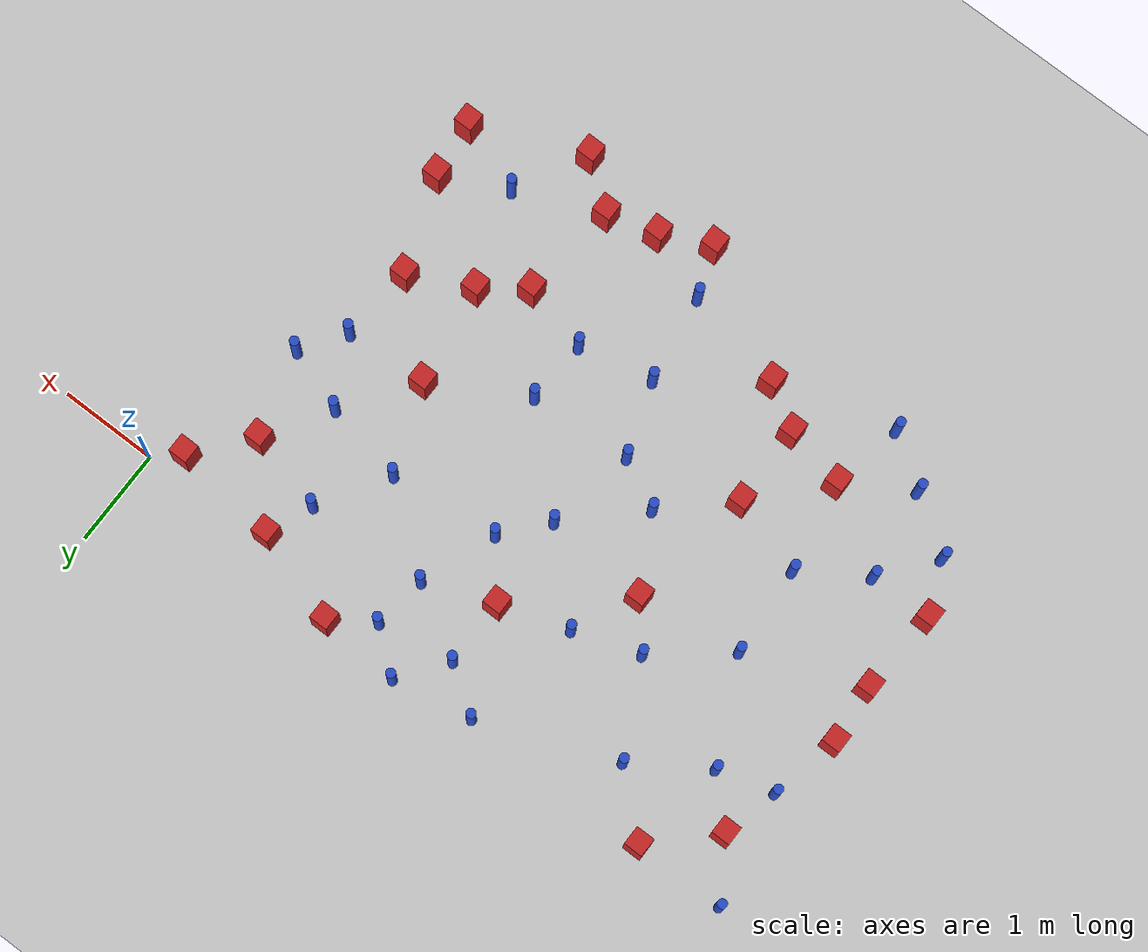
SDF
<sdf version="1.6">
 <world name="default">
  <model name="ground_plane">
   <static>1</static>
   <link name="link">
    <collision name="collision">
     <geometry><plane><normal>0 0 1</normal><size>100 100</size></plane></geometry>
     <surface><friction><ode><mu>100</mu><mu2>50</mu2></ode></friction></surface>
    </collision>
    <visual name="visual">
     <cast_shadows>0</cast_shadows>
     <geometry><plane><normal>0 0 1</normal><size>100 100</size></plane></geometry>
     <material>
      <ambient>1.0 1.0 1.0 1.0</ambient>
      <diffuse>0.8 0.8 0.8 1.0</diffuse>
      <specular>0.01 0.01 0.01 1.000000</specular>
     </material>
    </visual>
   </link>
  </model>
  <model name="square_post_obstacle1">
   <static>true</static>
   <pose>-0.453225772 -4.42769703456 8.22691968438e-08 7.22125133819e-06 -7.54495500217e-07 2.29674213826e-05</pose>
   <link name="link">
    <pose>0 0 0.25 0 -0 0</pose>
    <inertial>
     <mass>100</mass>
     <inertia>
      <ixx>0.166667</ixx>
      <ixy>0</ixy>
      <ixz>0</ixz>
      <iyy>0.166667</iyy>
      <iyz>0</iyz>
      <izz>0.166667</izz>
     </inertia>
    </inertial>
    <collision name="collision"><geometry><box><size>.2 .2 .5</size></box></geometry></collision>
    <visual name="visual">
     <geometry><box><size>.2 .2 .5</size></box></geometry>
     <material>
      <script><name>Gazebo/Red</name><uri>file://media/materials/scripts/gazebo.material</uri></script>
     </material>
    </visual>
   </link>
  </model>
  <model name="square_post_obstacle5">
   <static>true</static>
   <pose>-6.77804085161 -2.3862629534 8.22691968438e-08 7.2212513382e-06 -7.54495500217e-07 2.29674213826e-05</pose>
   <link name="link">
    <pose>0 0 0.25 0 -0 0</pose>
    <inertial>
     <mass>100</mass>
     <inertia>
      <ixx>0.166667</ixx>
      <ixy>0</ixy>
      <ixz>0</ixz>
      <iyy>0.166667</iyy>
      <iyz>0</iyz>
      <izz>0.166667</izz>
     </inertia>
    </inertial>
    <collision name="collision"><geometry><box><size>.2 .2 .5</size></box></geometry></collision>
    <visual name="visual">
     <geometry><box><size>.2 .2 .5</size></box></geometry>
     <material>
      <script><name>Gazebo/Red</name><uri>file://media/materials/scripts/gazebo.material</uri></script>
     </material>
    </visual>
   </link>
  </model>
  <model name="square_post_obstacle6">
   <static>true</static>
   <pose>-6.53302153086 -0.464855870581 8.22691968438e-08 7.2212513382e-06 -7.54495500217e-07 2.29674213826e-05</pose>
   <link name="link">
    <pose>0 0 0.25 0 -0 0</pose>
    <inertial>
     <mass>100</mass>
     <inertia>
      <ixx>0.166667</ixx>
      <ixy>0</ixy>
      <ixz>0</ixz>
      <iyy>0.166667</iyy>
      <iyz>0</iyz>
      <izz>0.166667</izz>
     </inertia>
    </inertial>
    <collision name="collision"><geometry><box><size>.2 .2 .5</size></box></geometry></collision>
    <visual name="visual">
     <geometry><box><size>.2 .2 .5</size></box></geometry>
     <material>
      <script><name>Gazebo/Red</name><uri>file://media/materials/scripts/gazebo.material</uri></script>
     </material>
    </visual>
   </link>
  </model>
  <model name="pole_obstacle5">
   <static>true</static>
   <pose>-1.98658447247 -1.26352869154 2.88873142074e-08 -9.90536690043e-09 4.60219948984e-07 -1.20965994963e-07</pose>
   <link name="link">
    <pose>0 0 0.3 0 -0 0</pose>
    <inertial>
     <mass>1</mass>
     <inertia><ixx>0.145833</ixx><ixy>0</ixy><ixz>0</ixz><iyy>0.145833</iyy><iyz>0</iyz><izz>0.125</izz></inertia>
    </inertial>
    <collision name="collision">
     <geometry><cylinder><radius>0.05</radius><length>.6</length></cylinder></geometry>
    </collision>
    <visual name="visual">
     <geometry><cylinder><radius>0.05</radius><length>.6</length></cylinder></geometry>
     <material>
      <script><name>Gazebo/Blue</name><uri>file://media/materials/scripts/gazebo.material</uri></script>
     </material>
    </visual>
   </link>
  </model>
  <model name="square_post_obstacle8">
   <static>true</static>
   <pose>-3.52622838958 -0.882869343843 8.22691968438e-08 7.2212513382e-06 -7.54495500217e-07 2.29674213826e-05</pose>
   <link name="link">
    <pose>0 0 0.25 0 -0 0</pose>
    <inertial>
     <mass>100</mass>
     <inertia>
      <ixx>0.166667</ixx>
      <ixy>0</ixy>
      <ixz>0</ixz>
      <iyy>0.166667</iyy>
      <iyz>0</iyz>
      <izz>0.166667</izz>
     </inertia>
    </inertial>
    <collision name="collision"><geometry><box><size>.2 .2 .5</size></box></geometry></collision>
    <visual name="visual">
     <geometry><box><size>.2 .2 .5</size></box></geometry>
     <material>
      <script><name>Gazebo/Red</name><uri>file://media/materials/scripts/gazebo.material</uri></script>
     </material>
    </visual>
   </link>
  </model>
  <model name="pole_obstacle7">
   <static>true</static>
   <pose>-4.22980877584 -1.10824775417 2.88873142074e-08 -9.90536689445e-09 4.60219948999e-07 -1.20965994956e-07</pose>
   <link name="link">
    <pose>0 0 0.3 0 -0 0</pose>
    <inertial>
     <mass>1</mass>
     <inertia><ixx>0.145833</ixx><ixy>0</ixy><ixz>0</ixz><iyy>0.145833</iyy><iyz>0</iyz><izz>0.125</izz></inertia>
    </inertial>
    <collision name="collision">
     <geometry><cylinder><radius>0.05</radius><length>.6</length></cylinder></geometry>
    </collision>
    <visual name="visual">
     <geometry><cylinder><radius>0.05</radius><length>.6</length></cylinder></geometry>
     <material>
      <script><name>Gazebo/Blue</name><uri>file://media/materials/scripts/gazebo.material</uri></script>
     </material>
    </visual>
   </link>
  </model>
  <model name="square_post_obstacle19">
   <static>true</static>
   <pose>-5.95324830502 0.11455333152 8.22691968438e-08 7.2212513382e-06 -7.54495500217e-07 2.29674213826e-05</pose>
   <link name="link">
    <pose>0 0 0.25 0 -0 0</pose>
    <inertial>
     <mass>100</mass>
     <inertia>
      <ixx>0.166667</ixx>
      <ixy>0</ixy>
      <ixz>0</ixz>
      <iyy>0.166667</iyy>
      <iyz>0</iyz>
      <izz>0.166667</izz>
     </inertia>
    </inertial>
    <collision name="collision"><geometry><box><size>.2 .2 .5</size></box></geometry></collision>
    <visual name="visual">
     <geometry><box><size>.2 .2 .5</size></box></geometry>
     <material>
      <script><name>Gazebo/Red</name><uri>file://media/materials/scripts/gazebo.material</uri></script>
     </material>
    </visual>
   </link>
  </model>
  <model name="pole_obstacle11">
   <static>true</static>
   <pose>-6.60695953444 -3.79870451077 2.88873142074e-08 -9.90536690245e-09 4.6021994898e-07 -1.20965994966e-07</pose>
   <link name="link">
    <pose>0 0 0.3 0 -0 0</pose>
    <inertial>
     <mass>1</mass>
     <inertia><ixx>0.145833</ixx><ixy>0</ixy><ixz>0</ixz><iyy>0.145833</iyy><iyz>0</iyz><izz>0.125</izz></inertia>
    </inertial>
    <collision name="collision">
     <geometry><cylinder><radius>0.05</radius><length>.6</length></cylinder></geometry>
    </collision>
    <visual name="visual">
     <geometry><cylinder><radius>0.05</radius><length>.6</length></cylinder></geometry>
     <material>
      <script><name>Gazebo/Blue</name><uri>file://media/materials/scripts/gazebo.material</uri></script>
     </material>
    </visual>
   </link>
  </model>
  <model name="pole_obstacle13">
   <static>true</static>
   <pose>-3.47232369091 -1.83874024077 2.88873142074e-08 -9.90536691123e-09 4.60219948959e-07 -1.20965994982e-07</pose>
   <link name="link">
    <pose>0 0 0.3 0 -0 0</pose>
    <inertial>
     <mass>1</mass>
     <inertia><ixx>0.145833</ixx><ixy>0</ixy><ixz>0</ixz><iyy>0.145833</iyy><iyz>0</iyz><izz>0.125</izz></inertia>
    </inertial>
    <collision name="collision">
     <geometry><cylinder><radius>0.05</radius><length>.6</length></cylinder></geometry>
    </collision>
    <visual name="visual">
     <geometry><cylinder><radius>0.05</radius><length>.6</length></cylinder></geometry>
     <material>
      <script><name>Gazebo/Blue</name><uri>file://media/materials/scripts/gazebo.material</uri></script>
     </material>
    </visual>
   </link>
  </model>
  <model name="pole_obstacle23">
   <static>true</static>
   <pose>-5.55312142066 -2.83954073413 2.88873142074e-08 -9.90536690245e-09 4.6021994898e-07 -1.20965994966e-07</pose>
   <link name="link">
    <pose>0 0 0.3 0 -0 0</pose>
    <inertial>
     <mass>1</mass>
     <inertia><ixx>0.145833</ixx><ixy>0</ixy><ixz>0</ixz><iyy>0.145833</iyy><iyz>0</iyz><izz>0.125</izz></inertia>
    </inertial>
    <collision name="collision">
     <geometry><cylinder><radius>0.05</radius><length>.6</length></cylinder></geometry>
    </collision>
    <visual name="visual">
     <geometry><cylinder><radius>0.05</radius><length>.6</length></cylinder></geometry>
     <material>
      <script><name>Gazebo/Blue</name><uri>file://media/materials/scripts/gazebo.material</uri></script>
     </material>
    </visual>
   </link>
  </model>
  <model name="pole_obstacle25">
   <static>true</static>
   <pose>-6.90949432621 0.115962901005 2.88873142074e-08 -9.90536689593e-09 4.60219948995e-07 -1.20965994958e-07</pose>
   <link name="link">
    <pose>0 0 0.3 0 -0 0</pose>
    <inertial>
     <mass>1</mass>
     <inertia><ixx>0.145833</ixx><ixy>0</ixy><ixz>0</ixz><iyy>0.145833</iyy><iyz>0</iyz><izz>0.125</izz></inertia>
    </inertial>
    <collision name="collision">
     <geometry><cylinder><radius>0.05</radius><length>.6</length></cylinder></geometry>
    </collision>
    <visual name="visual">
     <geometry><cylinder><radius>0.05</radius><length>.6</length></cylinder></geometry>
     <material>
      <script><name>Gazebo/Blue</name><uri>file://media/materials/scripts/gazebo.material</uri></script>
     </material>
    </visual>
   </link>
  </model>
  <model name="square_post_obstacle32">
   <static>true</static>
   <pose>-4.2964386524 -4.18320127917 8.22691968438e-08 7.2212513382e-06 -7.54495500217e-07 2.29674213826e-05</pose>
   <link name="link">
    <pose>0 0 0.25 0 -0 0</pose>
    <inertial>
     <mass>100</mass>
     <inertia>
      <ixx>0.166667</ixx>
      <ixy>0</ixy>
      <ixz>0</ixz>
      <iyy>0.166667</iyy>
      <iyz>0</iyz>
      <izz>0.166667</izz>
     </inertia>
    </inertial>
    <collision name="collision"><geometry><box><size>.2 .2 .5</size></box></geometry></collision>
    <visual name="visual">
     <geometry><box><size>.2 .2 .5</size></box></geometry>
     <material>
      <script><name>Gazebo/Red</name><uri>file://media/materials/scripts/gazebo.material</uri></script>
     </material>
    </visual>
   </link>
  </model>
  <model name="square_post_obstacle35">
   <static>true</static>
   <pose>-4.74016853458 -3.90568797373 8.22691968438e-08 7.22125133819e-06 -7.54495500217e-07 2.29674213826e-05</pose>
   <link name="link">
    <pose>0 0 0.25 0 -0 0</pose>
    <inertial>
     <mass>100</mass>
     <inertia>
      <ixx>0.166667</ixx>
      <ixy>0</ixy>
      <ixz>0</ixz>
      <iyy>0.166667</iyy>
      <iyz>0</iyz>
      <izz>0.166667</izz>
     </inertia>
    </inertial>
    <collision name="collision"><geometry><box><size>.2 .2 .5</size></box></geometry></collision>
    <visual name="visual">
     <geometry><box><size>.2 .2 .5</size></box></geometry>
     <material>
      <script><name>Gazebo/Red</name><uri>file://media/materials/scripts/gazebo.material</uri></script>
     </material>
    </visual>
   </link>
  </model>
  <model name="square_post_obstacle37">
   <static>true</static>
   <pose>-1.57165146655 -4.90109415546 8.22691968438e-08 7.2212513382e-06 -7.54495500217e-07 2.29674213826e-05</pose>
   <link name="link">
    <pose>0 0 0.25 0 -0 0</pose>
    <inertial>
     <mass>100</mass>
     <inertia>
      <ixx>0.166667</ixx>
      <ixy>0</ixy>
      <ixz>0</ixz>
      <iyy>0.166667</iyy>
      <iyz>0</iyz>
      <izz>0.166667</izz>
     </inertia>
    </inertial>
    <collision name="collision"><geometry><box><size>.2 .2 .5</size></box></geometry></collision>
    <visual name="visual">
     <geometry><box><size>.2 .2 .5</size></box></geometry>
     <material>
      <script><name>Gazebo/Red</name><uri>file://media/materials/scripts/gazebo.material</uri></script>
     </material>
    </visual>
   </link>
  </model>
  <model name="square_post_obstacle39">
   <static>true</static>
   <pose>-1.6574289807 -2.15318296058 8.22691968438e-08 7.2212513382e-06 -7.54495500217e-07 2.29674213826e-05</pose>
   <link name="link">
    <pose>0 0 0.25 0 -0 0</pose>
    <inertial>
     <mass>100</mass>
     <inertia>
      <ixx>0.166667</ixx>
      <ixy>0</ixy>
      <ixz>0</ixz>
      <iyy>0.166667</iyy>
      <iyz>0</iyz>
      <izz>0.166667</izz>
     </inertia>
    </inertial>
    <collision name="collision"><geometry><box><size>.2 .2 .5</size></box></geometry></collision>
    <visual name="visual">
     <geometry><box><size>.2 .2 .5</size></box></geometry>
     <material>
      <script><name>Gazebo/Red</name><uri>file://media/materials/scripts/gazebo.material</uri></script>
     </material>
    </visual>
   </link>
  </model>
  <model name="pole_obstacle42">
   <static>true</static>
   <pose>-6.19264026144 -3.25655042584 2.88873142074e-08 -9.90536690245e-09 4.6021994898e-07 -1.20965994966e-07</pose>
   <link name="link">
    <pose>0 0 0.3 0 -0 0</pose>
    <inertial>
     <mass>1</mass>
     <inertia><ixx>0.145833</ixx><ixy>0</ixy><ixz>0</ixz><iyy>0.145833</iyy><iyz>0</iyz><izz>0.125</izz></inertia>
    </inertial>
    <collision name="collision">
     <geometry><cylinder><radius>0.05</radius><length>.6</length></cylinder></geometry>
    </collision>
    <visual name="visual">
     <geometry><cylinder><radius>0.05</radius><length>.6</length></cylinder></geometry>
     <material>
      <script><name>Gazebo/Blue</name><uri>file://media/materials/scripts/gazebo.material</uri></script>
     </material>
    </visual>
   </link>
  </model>
  <model name="square_post_obstacle47">
   <static>true</static>
   <pose>-2.32946424457 0.224553306903 8.22691968438e-08 7.2212513382e-06 -7.54495500217e-07 2.29674213826e-05</pose>
   <link name="link">
    <pose>0 0 0.25 0 -0 0</pose>
    <inertial>
     <mass>100</mass>
     <inertia>
      <ixx>0.166667</ixx>
      <ixy>0</ixy>
      <ixz>0</ixz>
      <iyy>0.166667</iyy>
      <iyz>0</iyz>
      <izz>0.166667</izz>
     </inertia>
    </inertial>
    <collision name="collision"><geometry><box><size>.2 .2 .5</size></box></geometry></collision>
    <visual name="visual">
     <geometry><box><size>.2 .2 .5</size></box></geometry>
     <material>
      <script><name>Gazebo/Red</name><uri>file://media/materials/scripts/gazebo.material</uri></script>
     </material>
    </visual>
   </link>
  </model>
  <model name="square_post_obstacle48">
   <static>true</static>
   <pose>-0.518021703305 -3.8456207292 8.22691968438e-08 7.2212513382e-06 -7.54495500217e-07 2.29674213826e-05</pose>
   <link name="link">
    <pose>0 0 0.25 0 -0 0</pose>
    <inertial>
     <mass>100</mass>
     <inertia>
      <ixx>0.166667</ixx>
      <ixy>0</ixy>
      <ixz>0</ixz>
      <iyy>0.166667</iyy>
      <iyz>0</iyz>
      <izz>0.166667</izz>
     </inertia>
    </inertial>
    <collision name="collision"><geometry><box><size>.2 .2 .5</size></box></geometry></collision>
    <visual name="visual">
     <geometry><box><size>.2 .2 .5</size></box></geometry>
     <material>
      <script><name>Gazebo/Red</name><uri>file://media/materials/scripts/gazebo.material</uri></script>
     </material>
    </visual>
   </link>
  </model>
  <model name="pole_obstacle47">
   <static>true</static>
   <pose>-5.37608521531 -0.409149004521 2.88873142074e-08 -9.90536689981e-09 4.60219948986e-07 -1.20965994962e-07</pose>
   <link name="link">
    <pose>0 0 0.3 0 -0 0</pose>
    <inertial>
     <mass>1</mass>
     <inertia><ixx>0.145833</ixx><ixy>0</ixy><ixz>0</ixz><iyy>0.145833</iyy><iyz>0</iyz><izz>0.125</izz></inertia>
    </inertial>
    <collision name="collision">
     <geometry><cylinder><radius>0.05</radius><length>.6</length></cylinder></geometry>
    </collision>
    <visual name="visual">
     <geometry><cylinder><radius>0.05</radius><length>.6</length></cylinder></geometry>
     <material>
      <script><name>Gazebo/Blue</name><uri>file://media/materials/scripts/gazebo.material</uri></script>
     </material>
    </visual>
   </link>
  </model>
  <model name="pole_obstacle48">
   <static>true</static>
   <pose>-3.17051422597 0.285212881764 2.88873142074e-08 -9.90536689488e-09 4.60219948997e-07 -1.20965994956e-07</pose>
   <link name="link">
    <pose>0 0 0.3 0 -0 0</pose>
    <inertial>
     <mass>1</mass>
     <inertia><ixx>0.145833</ixx><ixy>0</ixy><ixz>0</ixz><iyy>0.145833</iyy><iyz>0</iyz><izz>0.125</izz></inertia>
    </inertial>
    <collision name="collision">
     <geometry><cylinder><radius>0.05</radius><length>.6</length></cylinder></geometry>
    </collision>
    <visual name="visual">
     <geometry><cylinder><radius>0.05</radius><length>.6</length></cylinder></geometry>
     <material>
      <script><name>Gazebo/Blue</name><uri>file://media/materials/scripts/gazebo.material</uri></script>
     </material>
    </visual>
   </link>
  </model>
  <model name="square_post_obstacle49">
   <static>true</static>
   <pose>-1.49692169663 -3.18103479338 8.22691968438e-08 7.2212513382e-06 -7.54495500217e-07 2.29674213826e-05</pose>
   <link name="link">
    <pose>0 0 0.25 0 -0 0</pose>
    <inertial>
     <mass>100</mass>
     <inertia>
      <ixx>0.166667</ixx>
      <ixy>0</ixy>
      <ixz>0</ixz>
      <iyy>0.166667</iyy>
      <iyz>0</iyz>
      <izz>0.166667</izz>
     </inertia>
    </inertial>
    <collision name="collision"><geometry><box><size>.2 .2 .5</size></box></geometry></collision>
    <visual name="visual">
     <geometry><box><size>.2 .2 .5</size></box></geometry>
     <material>
      <script><name>Gazebo/Red</name><uri>file://media/materials/scripts/gazebo.material</uri></script>
     </material>
    </visual>
   </link>
  </model>
  <model name="square_post_obstacle67">
   <static>true</static>
   <pose>-4.54516852846 -1.75632292674 8.22691968438e-08 7.2212513382e-06 -7.54495500217e-07 2.29674213826e-05</pose>
   <link name="link">
    <pose>0 0 0.25 0 -0 0</pose>
    <inertial>
     <mass>100</mass>
     <inertia>
      <ixx>0.166667</ixx>
      <ixy>0</ixy>
      <ixz>0</ixz>
      <iyy>0.166667</iyy>
      <iyz>0</iyz>
      <izz>0.166667</izz>
     </inertia>
    </inertial>
    <collision name="collision"><geometry><box><size>.2 .2 .5</size></box></geometry></collision>
    <visual name="visual">
     <geometry><box><size>.2 .2 .5</size></box></geometry>
     <material>
      <script><name>Gazebo/Red</name><uri>file://media/materials/scripts/gazebo.material</uri></script>
     </material>
    </visual>
   </link>
  </model>
  <model name="pole_obstacle76">
   <static>true</static>
   <pose>-5.61727395487 -1.91274012648 2.88873142074e-08 -9.90536689445e-09 4.60219948999e-07 -1.20965994956e-07</pose>
   <link name="link">
    <pose>0 0 0.3 0 -0 0</pose>
    <inertial>
     <mass>1</mass>
     <inertia><ixx>0.145833</ixx><ixy>0</ixy><ixz>0</ixz><iyy>0.145833</iyy><iyz>0</iyz><izz>0.125</izz></inertia>
    </inertial>
    <collision name="collision">
     <geometry><cylinder><radius>0.05</radius><length>.6</length></cylinder></geometry>
    </collision>
    <visual name="visual">
     <geometry><cylinder><radius>0.05</radius><length>.6</length></cylinder></geometry>
     <material>
      <script><name>Gazebo/Blue</name><uri>file://media/materials/scripts/gazebo.material</uri></script>
     </material>
    </visual>
   </link>
  </model>
  <model name="pole_obstacle82">
   <static>true</static>
   <pose>-3.23970545201 -4.41806329549 2.88873142074e-08 -9.90536692062e-09 4.60219948937e-07 -1.20965994985e-07</pose>
   <link name="link">
    <pose>0 0 0.3 0 -0 0</pose>
    <inertial>
     <mass>1</mass>
     <inertia><ixx>0.145833</ixx><ixy>0</ixy><ixz>0</ixz><iyy>0.145833</iyy><iyz>0</iyz><izz>0.125</izz></inertia>
    </inertial>
    <collision name="collision">
     <geometry><cylinder><radius>0.05</radius><length>.6</length></cylinder></geometry>
    </collision>
    <visual name="visual">
     <geometry><cylinder><radius>0.05</radius><length>.6</length></cylinder></geometry>
     <material>
      <script><name>Gazebo/Blue</name><uri>file://media/materials/scripts/gazebo.material</uri></script>
     </material>
    </visual>
   </link>
  </model>
  <model name="pole_obstacle84">
   <static>true</static>
   <pose>-2.74471948746 -0.0589526716739 2.88873142074e-08 -9.90536689199e-09 4.60219949004e-07 -1.20965994952e-07</pose>
   <link name="link">
    <pose>0 0 0.3 0 -0 0</pose>
    <inertial>
     <mass>1</mass>
     <inertia><ixx>0.145833</ixx><ixy>0</ixy><ixz>0</ixz><iyy>0.145833</iyy><iyz>0</iyz><izz>0.125</izz></inertia>
    </inertial>
    <collision name="collision">
     <geometry><cylinder><radius>0.05</radius><length>.6</length></cylinder></geometry>
    </collision>
    <visual name="visual">
     <geometry><cylinder><radius>0.05</radius><length>.6</length></cylinder></geometry>
     <material>
      <script><name>Gazebo/Blue</name><uri>file://media/materials/scripts/gazebo.material</uri></script>
     </material>
    </visual>
   </link>
  </model>
  <model name="square_post_obstacle85">
   <static>true</static>
   <pose>-0.757502318705 -0.773433643615 8.22691968438e-08 7.2212513382e-06 -7.54495500217e-07 2.29674213826e-05</pose>
   <link name="link">
    <pose>0 0 0.25 0 -0 0</pose>
    <inertial>
     <mass>100</mass>
     <inertia>
      <ixx>0.166667</ixx>
      <ixy>0</ixy>
      <ixz>0</ixz>
      <iyy>0.166667</iyy>
      <iyz>0</iyz>
      <izz>0.166667</izz>
     </inertia>
    </inertial>
    <collision name="collision"><geometry><box><size>.2 .2 .5</size></box></geometry></collision>
    <visual name="visual">
     <geometry><box><size>.2 .2 .5</size></box></geometry>
     <material>
      <script><name>Gazebo/Red</name><uri>file://media/materials/scripts/gazebo.material</uri></script>
     </material>
    </visual>
   </link>
  </model>
  <model name="pole_obstacle98">
   <static>true</static>
   <pose>-6.10867867197 -0.88980730338 2.88873142074e-08 -9.90536689837e-09 4.60219948989e-07 -1.2096599496e-07</pose>
   <link name="link">
    <pose>0 0 0.3 0 -0 0</pose>
    <inertial>
     <mass>1</mass>
     <inertia><ixx>0.145833</ixx><ixy>0</ixy><ixz>0</ixz><iyy>0.145833</iyy><iyz>0</iyz><izz>0.125</izz></inertia>
    </inertial>
    <collision name="collision">
     <geometry><cylinder><radius>0.05</radius><length>.6</length></cylinder></geometry>
    </collision>
    <visual name="visual">
     <geometry><cylinder><radius>0.05</radius><length>.6</length></cylinder></geometry>
     <material>
      <script><name>Gazebo/Blue</name><uri>file://media/materials/scripts/gazebo.material</uri></script>
     </material>
    </visual>
   </link>
  </model>
  <model name="pole_obstacle99">
   <static>true</static>
   <pose>-4.14407328682 -2.49875183226 2.88873142074e-08 -9.90536690245e-09 4.6021994898e-07 -1.20965994966e-07</pose>
   <link name="link">
    <pose>0 0 0.3 0 -0 0</pose>
    <inertial>
     <mass>1</mass>
     <inertia><ixx>0.145833</ixx><ixy>0</ixy><ixz>0</ixz><iyy>0.145833</iyy><iyz>0</iyz><izz>0.125</izz></inertia>
    </inertial>
    <collision name="collision">
     <geometry><cylinder><radius>0.05</radius><length>.6</length></cylinder></geometry>
    </collision>
    <visual name="visual">
     <geometry><cylinder><radius>0.05</radius><length>.6</length></cylinder></geometry>
     <material>
      <script><name>Gazebo/Blue</name><uri>file://media/materials/scripts/gazebo.material</uri></script>
     </material>
    </visual>
   </link>
  </model>
  <model name="pole_obstacle104">
   <static>true</static>
   <pose>-5.52527178297 -4.53431720623 2.88873142074e-08 -9.90536690842e-09 4.60219948965e-07 -1.20965994976e-07</pose>
   <link name="link">
    <pose>0 0 0.3 0 -0 0</pose>
    <inertial>
     <mass>1</mass>
     <inertia><ixx>0.145833</ixx><ixy>0</ixy><ixz>0</ixz><iyy>0.145833</iyy><iyz>0</iyz><izz>0.125</izz></inertia>
    </inertial>
    <collision name="collision">
     <geometry><cylinder><radius>0.05</radius><length>.6</length></cylinder></geometry>
    </collision>
    <visual name="visual">
     <geometry><cylinder><radius>0.05</radius><length>.6</length></cylinder></geometry>
     <material>
      <script><name>Gazebo/Blue</name><uri>file://media/materials/scripts/gazebo.material</uri></script>
     </material>
    </visual>
   </link>
  </model>
  <model name="square_post_obstacle93">
   <static>true</static>
   <pose>-1.37969511858 -0.0900199445675 8.22691968438e-08 7.2212513382e-06 -7.54495500217e-07 2.29674213826e-05</pose>
   <link name="link">
    <pose>0 0 0.25 0 -0 0</pose>
    <inertial>
     <mass>100</mass>
     <inertia>
      <ixx>0.166667</ixx>
      <ixy>0</ixy>
      <ixz>0</ixz>
      <iyy>0.166667</iyy>
      <iyz>0</iyz>
      <izz>0.166667</izz>
     </inertia>
    </inertial>
    <collision name="collision"><geometry><box><size>.2 .2 .5</size></box></geometry></collision>
    <visual name="visual">
     <geometry><box><size>.2 .2 .5</size></box></geometry>
     <material>
      <script><name>Gazebo/Red</name><uri>file://media/materials/scripts/gazebo.material</uri></script>
     </material>
    </visual>
   </link>
  </model>
  <model name="pole_obstacle105">
   <static>true</static>
   <pose>-1.16941787189 -4.17486004738 2.88873142074e-08 -9.90536689852e-09 4.60219948989e-07 -1.2096599496e-07</pose>
   <link name="link">
    <pose>0 0 0.3 0 -0 0</pose>
    <inertial>
     <mass>1</mass>
     <inertia><ixx>0.145833</ixx><ixy>0</ixy><ixz>0</ixz><iyy>0.145833</iyy><iyz>0</iyz><izz>0.125</izz></inertia>
    </inertial>
    <collision name="collision">
     <geometry><cylinder><radius>0.05</radius><length>.6</length></cylinder></geometry>
    </collision>
    <visual name="visual">
     <geometry><cylinder><radius>0.05</radius><length>.6</length></cylinder></geometry>
     <material>
      <script><name>Gazebo/Blue</name><uri>file://media/materials/scripts/gazebo.material</uri></script>
     </material>
    </visual>
   </link>
  </model>
  <model name="square_post_obstacle94">
   <static>true</static>
   <pose>-0.870125588666 -2.88186041395 8.22691968438e-08 7.2212513382e-06 -7.54495500217e-07 2.29674213826e-05</pose>
   <link name="link">
    <pose>0 0 0.25 0 -0 0</pose>
    <inertial>
     <mass>100</mass>
     <inertia>
      <ixx>0.166667</ixx>
      <ixy>0</ixy>
      <ixz>0</ixz>
      <iyy>0.166667</iyy>
      <iyz>0</iyz>
      <izz>0.166667</izz>
     </inertia>
    </inertial>
    <collision name="collision"><geometry><box><size>.2 .2 .5</size></box></geometry></collision>
    <visual name="visual">
     <geometry><box><size>.2 .2 .5</size></box></geometry>
     <material>
      <script><name>Gazebo/Red</name><uri>file://media/materials/scripts/gazebo.material</uri></script>
     </material>
    </visual>
   </link>
  </model>
  <model name="pole_obstacle113">
   <static>true</static>
   <pose>-2.5900128533 -2.68580811025 2.88873142074e-08 -9.90536690232e-09 4.6021994898e-07 -1.20965994968e-07</pose>
   <link name="link">
    <pose>0 0 0.3 0 -0 0</pose>
    <inertial>
     <mass>1</mass>
     <inertia><ixx>0.145833</ixx><ixy>0</ixy><ixz>0</ixz><iyy>0.145833</iyy><iyz>0</iyz><izz>0.125</izz></inertia>
    </inertial>
    <collision name="collision">
     <geometry><cylinder><radius>0.05</radius><length>.6</length></cylinder></geometry>
    </collision>
    <visual name="visual">
     <geometry><cylinder><radius>0.05</radius><length>.6</length></cylinder></geometry>
     <material>
      <script><name>Gazebo/Blue</name><uri>file://media/materials/scripts/gazebo.material</uri></script>
     </material>
    </visual>
   </link>
  </model>
  <model name="pole_obstacle114">
   <static>true</static>
   <pose>-3.5237265119 -0.195121256896 2.88873142074e-08 -9.90536691049e-09 4.6021994896e-07 -1.20965994981e-07</pose>
   <link name="link">
    <pose>0 0 0.3 0 -0 0</pose>
    <inertial>
     <mass>1</mass>
     <inertia><ixx>0.145833</ixx><ixy>0</ixy><ixz>0</ixz><iyy>0.145833</iyy><iyz>0</iyz><izz>0.125</izz></inertia>
    </inertial>
    <collision name="collision">
     <geometry><cylinder><radius>0.05</radius><length>.6</length></cylinder></geometry>
    </collision>
    <visual name="visual">
     <geometry><cylinder><radius>0.05</radius><length>.6</length></cylinder></geometry>
     <material>
      <script><name>Gazebo/Blue</name><uri>file://media/materials/scripts/gazebo.material</uri></script>
     </material>
    </visual>
   </link>
  </model>
  <model name="pole_obstacle116">
   <static>true</static>
   <pose>-6.04132741145 -4.18253566559 2.88873142074e-08 -9.90536690842e-09 4.60219948965e-07 -1.20965994976e-07</pose>
   <link name="link">
    <pose>0 0 0.3 0 -0 0</pose>
    <inertial>
     <mass>1</mass>
     <inertia><ixx>0.145833</ixx><ixy>0</ixy><ixz>0</ixz><iyy>0.145833</iyy><iyz>0</iyz><izz>0.125</izz></inertia>
    </inertial>
    <collision name="collision">
     <geometry><cylinder><radius>0.05</radius><length>.6</length></cylinder></geometry>
    </collision>
    <visual name="visual">
     <geometry><cylinder><radius>0.05</radius><length>.6</length></cylinder></geometry>
     <material>
      <script><name>Gazebo/Blue</name><uri>file://media/materials/scripts/gazebo.material</uri></script>
     </material>
    </visual>
   </link>
  </model>
  <model name="pole_obstacle120">
   <static>true</static>
   <pose>-0.80393407837 -2.10249173418 2.88873142074e-08 -9.90536689636e-09 4.60219948994e-07 -1.20965994958e-07</pose>
   <link name="link">
    <pose>0 0 0.3 0 -0 0</pose>
    <inertial>
     <mass>1</mass>
     <inertia><ixx>0.145833</ixx><ixy>0</ixy><ixz>0</ixz><iyy>0.145833</iyy><iyz>0</iyz><izz>0.125</izz></inertia>
    </inertial>
    <collision name="collision">
     <geometry><cylinder><radius>0.05</radius><length>.6</length></cylinder></geometry>
    </collision>
    <visual name="visual">
     <geometry><cylinder><radius>0.05</radius><length>.6</length></cylinder></geometry>
     <material>
      <script><name>Gazebo/Blue</name><uri>file://media/materials/scripts/gazebo.material</uri></script>
     </material>
    </visual>
   </link>
  </model>
  <model name="pole_obstacle135">
   <static>true</static>
   <pose>-1.55718921452 -0.560547276413 2.88873142074e-08 -9.90536689692e-09 4.60219948993e-07 -1.20965994958e-07</pose>
   <link name="link">
    <pose>0 0 0.3 0 -0 0</pose>
    <inertial>
     <mass>1</mass>
     <inertia><ixx>0.145833</ixx><ixy>0</ixy><ixz>0</ixz><iyy>0.145833</iyy><iyz>0</iyz><izz>0.125</izz></inertia>
    </inertial>
    <collision name="collision">
     <geometry><cylinder><radius>0.05</radius><length>.6</length></cylinder></geometry>
    </collision>
    <visual name="visual">
     <geometry><cylinder><radius>0.05</radius><length>.6</length></cylinder></geometry>
     <material>
      <script><name>Gazebo/Blue</name><uri>file://media/materials/scripts/gazebo.material</uri></script>
     </material>
    </visual>
   </link>
  </model>
  <model name="pole_obstacle139">
   <static>true</static>
   <pose>-3.99542847238 0.128894288679 2.88873142074e-08 -9.90536691245e-09 4.60219948956e-07 -1.20965994984e-07</pose>
   <link name="link">
    <pose>0 0 0.3 0 -0 0</pose>
    <inertial>
     <mass>1</mass>
     <inertia><ixx>0.145833</ixx><ixy>0</ixy><ixz>0</ixz><iyy>0.145833</iyy><iyz>0</iyz><izz>0.125</izz></inertia>
    </inertial>
    <collision name="collision">
     <geometry><cylinder><radius>0.05</radius><length>.6</length></cylinder></geometry>
    </collision>
    <visual name="visual">
     <geometry><cylinder><radius>0.05</radius><length>.6</length></cylinder></geometry>
     <material>
      <script><name>Gazebo/Blue</name><uri>file://media/materials/scripts/gazebo.material</uri></script>
     </material>
    </visual>
   </link>
  </model>
  <model name="pole_obstacle148">
   <static>true</static>
   <pose>-1.149530779 -1.43121012996 2.88873142074e-08 -9.90536689672e-09 4.60219948993e-07 -1.20965994959e-07</pose>
   <link name="link">
    <pose>0 0 0.3 0 -0 0</pose>
    <inertial>
     <mass>1</mass>
     <inertia><ixx>0.145833</ixx><ixy>0</ixy><ixz>0</ixz><iyy>0.145833</iyy><iyz>0</iyz><izz>0.125</izz></inertia>
    </inertial>
    <collision name="collision">
     <geometry><cylinder><radius>0.05</radius><length>.6</length></cylinder></geometry>
    </collision>
    <visual name="visual">
     <geometry><cylinder><radius>0.05</radius><length>.6</length></cylinder></geometry>
     <material>
      <script><name>Gazebo/Blue</name><uri>file://media/materials/scripts/gazebo.material</uri></script>
     </material>
    </visual>
   </link>
  </model>
  <model name="square_post_obstacle138">
   <static>true</static>
   <pose>-1.92990841011 -3.50188406189 8.22691968438e-08 7.2212513382e-06 -7.54495500217e-07 2.29674213826e-05</pose>
   <link name="link">
    <pose>0 0 0.25 0 -0 0</pose>
    <inertial>
     <mass>100</mass>
     <inertia>
      <ixx>0.166667</ixx>
      <ixy>0</ixy>
      <ixz>0</ixz>
      <iyy>0.166667</iyy>
      <iyz>0</iyz>
      <izz>0.166667</izz>
     </inertia>
    </inertial>
    <collision name="collision"><geometry><box><size>.2 .2 .5</size></box></geometry></collision>
    <visual name="visual">
     <geometry><box><size>.2 .2 .5</size></box></geometry>
     <material>
      <script><name>Gazebo/Red</name><uri>file://media/materials/scripts/gazebo.material</uri></script>
     </material>
    </visual>
   </link>
  </model>
  <model name="square_post_obstacle142">
   <static>true</static>
   <pose>-4.76093123662 -3.0765987866 8.22691968438e-08 7.2212513382e-06 -7.54495500217e-07 2.29674213826e-05</pose>
   <link name="link">
    <pose>0 0 0.25 0 -0 0</pose>
    <inertial>
     <mass>100</mass>
     <inertia>
      <ixx>0.166667</ixx>
      <ixy>0</ixy>
      <ixz>0</ixz>
      <iyy>0.166667</iyy>
      <iyz>0</iyz>
      <izz>0.166667</izz>
     </inertia>
    </inertial>
    <collision name="collision"><geometry><box><size>.2 .2 .5</size></box></geometry></collision>
    <visual name="visual">
     <geometry><box><size>.2 .2 .5</size></box></geometry>
     <material>
      <script><name>Gazebo/Red</name><uri>file://media/materials/scripts/gazebo.material</uri></script>
     </material>
    </visual>
   </link>
  </model>
  <model name="square_post_obstacle149">
   <static>true</static>
   <pose>-0.295363718262 -0.220412493438 8.22691968438e-08 7.2212513382e-06 -7.54495500217e-07 2.29674213826e-05</pose>
   <link name="link">
    <pose>0 0 0.25 0 -0 0</pose>
    <inertial>
     <mass>100</mass>
     <inertia>
      <ixx>0.166667</ixx>
      <ixy>0</ixy>
      <ixz>0</ixz>
      <iyy>0.166667</iyy>
      <iyz>0</iyz>
      <izz>0.166667</izz>
     </inertia>
    </inertial>
    <collision name="collision"><geometry><box><size>.2 .2 .5</size></box></geometry></collision>
    <visual name="visual">
     <geometry><box><size>.2 .2 .5</size></box></geometry>
     <material>
      <script><name>Gazebo/Red</name><uri>file://media/materials/scripts/gazebo.material</uri></script>
     </material>
    </visual>
   </link>
  </model>
  <model name="pole_obstacle158">
   <static>true</static>
   <pose>-6.68532637593 -1.04985848797 2.88873142074e-08 -9.90536689582e-09 4.60219948995e-07 -1.20965994957e-07</pose>
   <link name="link">
    <pose>0 0 0.3 0 -0 0</pose>
    <inertial>
     <mass>1</mass>
     <inertia><ixx>0.145833</ixx><ixy>0</ixy><ixz>0</ixz><iyy>0.145833</iyy><iyz>0</iyz><izz>0.125</izz></inertia>
    </inertial>
    <collision name="collision">
     <geometry><cylinder><radius>0.05</radius><length>.6</length></cylinder></geometry>
    </collision>
    <visual name="visual">
     <geometry><cylinder><radius>0.05</radius><length>.6</length></cylinder></geometry>
     <material>
      <script><name>Gazebo/Blue</name><uri>file://media/materials/scripts/gazebo.material</uri></script>
     </material>
    </visual>
   </link>
  </model>
  <model name="pole_obstacle171">
   <static>true</static>
   <pose>-3.38670159063 -3.50468392949 2.88873142074e-08 -9.90536690232e-09 4.6021994898e-07 -1.20965994968e-07</pose>
   <link name="link">
    <pose>0 0 0.3 0 -0 0</pose>
    <inertial>
     <mass>1</mass>
     <inertia><ixx>0.145833</ixx><ixy>0</ixy><ixz>0</ixz><iyy>0.145833</iyy><iyz>0</iyz><izz>0.125</izz></inertia>
    </inertial>
    <collision name="collision">
     <geometry><cylinder><radius>0.05</radius><length>.6</length></cylinder></geometry>
    </collision>
    <visual name="visual">
     <geometry><cylinder><radius>0.05</radius><length>.6</length></cylinder></geometry>
     <material>
      <script><name>Gazebo/Blue</name><uri>file://media/materials/scripts/gazebo.material</uri></script>
     </material>
    </visual>
   </link>
  </model>
  <model name="pole_obstacle177">
   <static>true</static>
   <pose>-4.9053615233 -1.33308931385 2.88873142074e-08 -9.90536689445e-09 4.60219948999e-07 -1.20965994956e-07</pose>
   <link name="link">
    <pose>0 0 0.3 0 -0 0</pose>
    <inertial>
     <mass>1</mass>
     <inertia><ixx>0.145833</ixx><ixy>0</ixy><ixz>0</ixz><iyy>0.145833</iyy><iyz>0</iyz><izz>0.125</izz></inertia>
    </inertial>
    <collision name="collision">
     <geometry><cylinder><radius>0.05</radius><length>.6</length></cylinder></geometry>
    </collision>
    <visual name="visual">
     <geometry><cylinder><radius>0.05</radius><length>.6</length></cylinder></geometry>
     <material>
      <script><name>Gazebo/Blue</name><uri>file://media/materials/scripts/gazebo.material</uri></script>
     </material>
    </visual>
   </link>
  </model>
  <model name="square_post_obstacle166">
   <static>true</static>
   <pose>-5.37686302445 -3.77088097116 8.22691968438e-08 7.2212513382e-06 -7.54495500217e-07 2.29674213826e-05</pose>
   <link name="link">
    <pose>0 0 0.25 0 -0 0</pose>
    <inertial>
     <mass>100</mass>
     <inertia>
      <ixx>0.166667</ixx>
      <ixy>0</ixy>
      <ixz>0</ixz>
      <iyy>0.166667</iyy>
      <iyz>0</iyz>
      <izz>0.166667</izz>
     </inertia>
    </inertial>
    <collision name="collision"><geometry><box><size>.2 .2 .5</size></box></geometry></collision>
    <visual name="visual">
     <geometry><box><size>.2 .2 .5</size></box></geometry>
     <material>
      <script><name>Gazebo/Red</name><uri>file://media/materials/scripts/gazebo.material</uri></script>
     </material>
    </visual>
   </link>
  </model>
  <model name="square_post_obstacle167">
   <static>true</static>
   <pose>-6.82743725829 -3.25682080444 8.22691968438e-08 7.2212513382e-06 -7.54495500217e-07 2.29674213826e-05</pose>
   <link name="link">
    <pose>0 0 0.25 0 -0 0</pose>
    <inertial>
     <mass>100</mass>
     <inertia>
      <ixx>0.166667</ixx>
      <ixy>0</ixy>
      <ixz>0</ixz>
      <iyy>0.166667</iyy>
      <iyz>0</iyz>
      <izz>0.166667</izz>
     </inertia>
    </inertial>
    <collision name="collision"><geometry><box><size>.2 .2 .5</size></box></geometry></collision>
    <visual name="visual">
     <geometry><box><size>.2 .2 .5</size></box></geometry>
     <material>
      <script><name>Gazebo/Red</name><uri>file://media/materials/scripts/gazebo.material</uri></script>
     </material>
    </visual>
   </link>
  </model>
  <model name="square_post_obstacle168">
   <static>true</static>
   <pose>-6.83161814074 -1.77672274389 8.22691968438e-08 7.2212513382e-06 -7.54495500217e-07 2.29674213826e-05</pose>
   <link name="link">
    <pose>0 0 0.25 0 -0 0</pose>
    <inertial>
     <mass>100</mass>
     <inertia>
      <ixx>0.166667</ixx>
      <ixy>0</ixy>
      <ixz>0</ixz>
      <iyy>0.166667</iyy>
      <iyz>0</iyz>
      <izz>0.166667</izz>
     </inertia>
    </inertial>
    <collision name="collision"><geometry><box><size>.2 .2 .5</size></box></geometry></collision>
    <visual name="visual">
     <geometry><box><size>.2 .2 .5</size></box></geometry>
     <material>
      <script><name>Gazebo/Red</name><uri>file://media/materials/scripts/gazebo.material</uri></script>
     </material>
    </visual>
   </link>
  </model>
  <model name="pole_obstacle187">
   <static>true</static>
   <pose>-3.6438663739 -2.75848121426 2.88873142074e-08 -9.90536690232e-09 4.6021994898e-07 -1.20965994968e-07</pose>
   <link name="link">
    <pose>0 0 0.3 0 -0 0</pose>
    <inertial>
     <mass>1</mass>
     <inertia><ixx>0.145833</ixx><ixy>0</ixy><ixz>0</ixz><iyy>0.145833</iyy><iyz>0</iyz><izz>0.125</izz></inertia>
    </inertial>
    <collision name="collision">
     <geometry><cylinder><radius>0.05</radius><length>.6</length></cylinder></geometry>
    </collision>
    <visual name="visual">
     <geometry><cylinder><radius>0.05</radius><length>.6</length></cylinder></geometry>
     <material>
      <script><name>Gazebo/Blue</name><uri>file://media/materials/scripts/gazebo.material</uri></script>
     </material>
    </visual>
   </link>
  </model>
  <model name="square_post_obstacle178">
   <static>true</static>
   <pose>-2.04166997049 -4.53252915548 8.22691968438e-08 7.22125133819e-06 -7.54495500217e-07 2.29674213826e-05</pose>
   <link name="link">
    <pose>0 0 0.25 0 -0 0</pose>
    <inertial>
     <mass>100</mass>
     <inertia>
      <ixx>0.166667</ixx>
      <ixy>0</ixy>
      <ixz>0</ixz>
      <iyy>0.166667</iyy>
      <iyz>0</iyz>
      <izz>0.166667</izz>
     </inertia>
    </inertial>
    <collision name="collision"><geometry><box><size>.2 .2 .5</size></box></geometry></collision>
    <visual name="visual">
     <geometry><box><size>.2 .2 .5</size></box></geometry>
     <material>
      <script><name>Gazebo/Red</name><uri>file://media/materials/scripts/gazebo.material</uri></script>
     </material>
    </visual>
   </link>
  </model>
  <model name="square_post_obstacle194">
   <static>true</static>
   <pose>-3.05926583494 -4.90847369903 8.22691968438e-08 7.22125133819e-06 -7.54495500217e-07 2.29674213826e-05</pose>
   <link name="link">
    <pose>0 0 0.25 0 -0 0</pose>
    <inertial>
     <mass>100</mass>
     <inertia>
      <ixx>0.166667</ixx>
      <ixy>0</ixy>
      <ixz>0</ixz>
      <iyy>0.166667</iyy>
      <iyz>0</iyz>
      <izz>0.166667</izz>
     </inertia>
    </inertial>
    <collision name="collision"><geometry><box><size>.2 .2 .5</size></box></geometry></collision>
    <visual name="visual">
     <geometry><box><size>.2 .2 .5</size></box></geometry>
     <material>
      <script><name>Gazebo/Red</name><uri>file://media/materials/scripts/gazebo.material</uri></script>
     </material>
    </visual>
   </link>
  </model>
  <model name="square_post_obstacle208">
   <static>true</static>
   <pose>-2.5591845224 -4.67218892809 8.22691968438e-08 7.2212513382e-06 -7.54495500217e-07 2.29674213826e-05</pose>
   <link name="link">
    <pose>0 0 0.25 0 -0 0</pose>
    <inertial>
     <mass>100</mass>
     <inertia>
      <ixx>0.166667</ixx>
      <ixy>0</ixy>
      <ixz>0</ixz>
      <iyy>0.166667</iyy>
      <iyz>0</iyz>
      <izz>0.166667</izz>
     </inertia>
    </inertial>
    <collision name="collision"><geometry><box><size>.2 .2 .5</size></box></geometry></collision>
    <visual name="visual">
     <geometry><box><size>.2 .2 .5</size></box></geometry>
     <material>
      <script><name>Gazebo/Red</name><uri>file://media/materials/scripts/gazebo.material</uri></script>
     </material>
    </visual>
   </link>
  </model>
  <model name="pole_obstacle203">
   <static>true</static>
   <pose>-3.10585458345 -1.39624648088 2.88873142074e-08 -9.90536689395e-09 4.60219949e-07 -1.20965994953e-07</pose>
   <link name="link">
    <pose>0 0 0.3 0 -0 0</pose>
    <inertial>
     <mass>1</mass>
     <inertia><ixx>0.145833</ixx><ixy>0</ixy><ixz>0</ixz><iyy>0.145833</iyy><iyz>0</iyz><izz>0.125</izz></inertia>
    </inertial>
    <collision name="collision">
     <geometry><cylinder><radius>0.05</radius><length>.6</length></cylinder></geometry>
    </collision>
    <visual name="visual">
     <geometry><cylinder><radius>0.05</radius><length>.6</length></cylinder></geometry>
     <material>
      <script><name>Gazebo/Blue</name><uri>file://media/materials/scripts/gazebo.material</uri></script>
     </material>
    </visual>
   </link>
  </model>
  <model name="pole_obstacle205">
   <static>true</static>
   <pose>-2.62227677765 -3.33810755026 2.88873142074e-08 -9.90536690232e-09 4.6021994898e-07 -1.20965994968e-07</pose>
   <link name="link">
    <pose>0 0 0.3 0 -0 0</pose>
    <inertial>
     <mass>1</mass>
     <inertia><ixx>0.145833</ixx><ixy>0</ixy><ixz>0</ixz><iyy>0.145833</iyy><iyz>0</iyz><izz>0.125</izz></inertia>
    </inertial>
    <collision name="collision">
     <geometry><cylinder><radius>0.05</radius><length>.6</length></cylinder></geometry>
    </collision>
    <visual name="visual">
     <geometry><cylinder><radius>0.05</radius><length>.6</length></cylinder></geometry>
     <material>
      <script><name>Gazebo/Blue</name><uri>file://media/materials/scripts/gazebo.material</uri></script>
     </material>
    </visual>
   </link>
  </model>
  <model name="pole_obstacle216">
   <static>true</static>
   <pose>-0.503096413557 -1.66046345011 2.88873142074e-08 -9.90536689621e-09 4.60219948994e-07 -1.20965994957e-07</pose>
   <link name="link">
    <pose>0 0 0.3 0 -0 0</pose>
    <inertial>
     <mass>1</mass>
     <inertia><ixx>0.145833</ixx><ixy>0</ixy><ixz>0</ixz><iyy>0.145833</iyy><iyz>0</iyz><izz>0.125</izz></inertia>
    </inertial>
    <collision name="collision">
     <geometry><cylinder><radius>0.05</radius><length>.6</length></cylinder></geometry>
    </collision>
    <visual name="visual">
     <geometry><cylinder><radius>0.05</radius><length>.6</length></cylinder></geometry>
     <material>
      <script><name>Gazebo/Blue</name><uri>file://media/materials/scripts/gazebo.material</uri></script>
     </material>
    </visual>
   </link>
  </model>
  <model name="pole_obstacle219">
   <static>true</static>
   <pose>-2.81825999087 -0.614071979588 2.88873142074e-08 -9.90536690901e-09 4.60219948964e-07 -1.20965994979e-07</pose>
   <link name="link">
    <pose>0 0 0.3 0 -0 0</pose>
    <inertial>
     <mass>1</mass>
     <inertia><ixx>0.145833</ixx><ixy>0</ixy><ixz>0</ixz><iyy>0.145833</iyy><iyz>0</iyz><izz>0.125</izz></inertia>
    </inertial>
    <collision name="collision">
     <geometry><cylinder><radius>0.05</radius><length>.6</length></cylinder></geometry>
    </collision>
    <visual name="visual">
     <geometry><cylinder><radius>0.05</radius><length>.6</length></cylinder></geometry>
     <material>
      <script><name>Gazebo/Blue</name><uri>file://media/materials/scripts/gazebo.material</uri></script>
     </material>
    </visual>
   </link>
  </model>
 </world>
</sdf>
